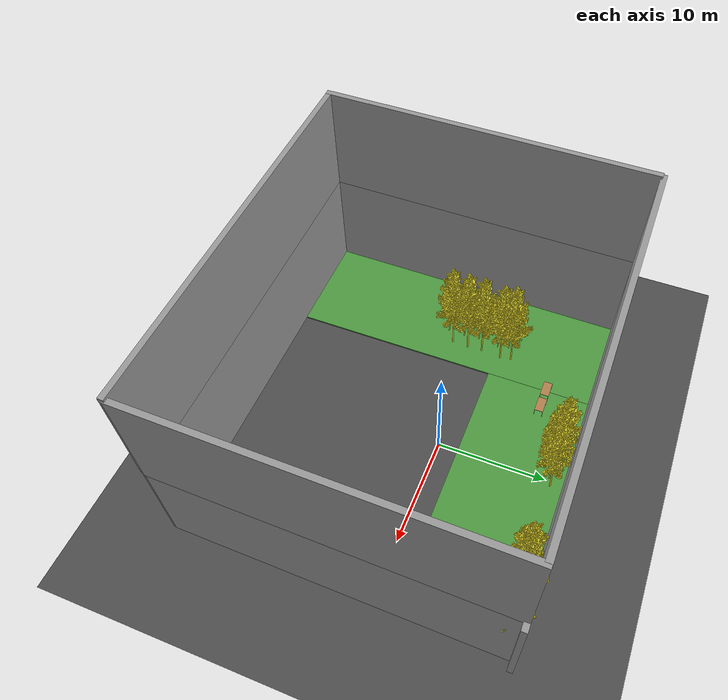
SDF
<sdf version="1.6">
 <world name="default">
  <light name="sun" type="directional">
   <pose>0 0 10 0 -0 0</pose>
   <diffuse>0.8 0.8 0.8 1</diffuse>
   <specular>0.2 0.2 0.2 1</specular>
   <attenuation>
    <range>1000</range>
    <constant>0.9</constant>
    <linear>0.01</linear>
    <quadratic>0.001</quadratic>
   </attenuation>
   <direction>-0.5 0.1 -0.9</direction>
  </light>
  <model name="ground_plane">
   <static>1</static>
   <link name="link">
    <collision name="collision">
     <geometry><plane><normal>0 0 1</normal><size>40000 40000</size></plane></geometry>
     <surface>
      <contact><collide_bitmask>65535</collide_bitmask></contact>
      <friction><ode><mu>100</mu><mu2>50</mu2></ode></friction>
     </surface>
    </collision>
    <visual name="visual">
     <cast_shadows>0</cast_shadows>
     <geometry><plane><normal>0 0 1</normal><size>50 50</size></plane></geometry>
     <material>
      <script><uri>file://media/materials/scripts/gazebo.material</uri><name>Gazebo/Road</name></script>
     </material>
    </visual>
   </link>
  </model>
  <gravity>0 0 -9.8</gravity>
  <magnetic_field>6e-06 2.3e-05 -4.2e-05</magnetic_field>
  <physics name="default_physics" default="0" type="ode">
   <max_step_size>0.001</max_step_size>
   <real_time_factor>1</real_time_factor>
   <real_time_update_rate>1000</real_time_update_rate>
  </physics>
  <scene><ambient>0.4 0.4 0.4 1</ambient><background>0.7 0.7 0.7 1</background><shadows>1</shadows></scene>
  <audio><device>default</device></audio>
  <spherical_coordinates>
   <surface_model>EARTH_WGS84</surface_model>
   <latitude_deg>0</latitude_deg>
   <longitude_deg>0</longitude_deg>
   <elevation>0</elevation>
   <heading_deg>0</heading_deg>
  </spherical_coordinates>
  <model name="grass_plane">
   <link name="link">
    <inertial>
     <mass>1</mass>
     <inertia><ixx>1</ixx><ixy>0</ixy><ixz>0</ixz><iyy>1</iyy><iyz>0</iyz><izz>1</izz></inertia>
    </inertial>
    <visual name="visual">
     <cast_shadows>0</cast_shadows>
     <geometry><box><size>10 30 0.2</size></box></geometry>
     <material>
      <script><uri>file://media/materials/scripts/gazebo.material</uri><name>Gazebo/Grass</name></script>
     </material>
    </visual>
    <collision name="collision">
     <geometry><box><size>10 30 0.2</size></box></geometry>
     <surface>
      <friction>
       <ode><mu>1</mu><mu2>1</mu2><fdir1>0 0 0</fdir1><slip1>0</slip1><slip2>0</slip2></ode>
       <torsional>
        <coefficient>1</coefficient>
        <patch_radius>0</patch_radius>
        <surface_radius>0</surface_radius>
        <use_patch_radius>1</use_patch_radius>
        <ode><slip>0</slip></ode>
       </torsional>
      </friction>
      <bounce><restitution_coefficient>0</restitution_coefficient><threshold>1e+06</threshold></bounce>
      <contact>
       <collide_without_contact>0</collide_without_contact>
       <collide_without_contact_bitmask>1</collide_without_contact_bitmask>
       <collide_bitmask>1</collide_bitmask>
       <ode>
        <soft_cfm>0</soft_cfm>
        <soft_erp>0.2</soft_erp>
        <kp>1e+13</kp>
        <kd>1</kd>
        <max_vel>0.01</max_vel>
        <min_depth>0</min_depth>
       </ode>
       <bullet>
        <split_impulse>1</split_impulse>
        <split_impulse_penetration_threshold>-0.01</split_impulse_penetration_threshold>
        <soft_cfm>0</soft_cfm>
        <soft_erp>0.2</soft_erp>
        <kp>1e+13</kp>
        <kd>1</kd>
       </bullet>
      </contact>
     </surface>
    </collision>
   </link>
   <static>1</static>
   <pose>-14.0993 -2.85316 0 0 -0 0</pose>
  </model>
  <model name="wall1">
   <link name="link">
    <enable_wind>1</enable_wind>
    <inertial>
     <mass>1</mass>
     <inertia><ixx>1</ixx><ixy>0</ixy><ixz>0</ixz><iyy>1</iyy><iyz>0</iyz><izz>1</izz></inertia>
    </inertial>
    <visual name="visual">
     <cast_shadows>0</cast_shadows>
     <geometry><box><size>35 0.5 10</size></box></geometry>
     <material>
      <script>
       <uri>model://grey_wall/materials/scripts</uri>
       <uri>model://grey_wall/materials/textures</uri>
       <name>vrc/grey_wall</name>
      </script>
      <shader type="pixel"><normal_map>__default__</normal_map></shader>
      <ambient>1 1 1 1</ambient>
      <diffuse>1 1 1 1</diffuse>
      <specular>0 0 0 1</specular>
      <emissive>0 0 0 1</emissive>
     </material>
    </visual>
    <collision name="collision">
     <geometry><box><size>35 0.5 10</size></box></geometry>
     <surface>
      <friction>
       <ode><mu>1</mu><mu2>1</mu2><fdir1>0 0 0</fdir1><slip1>0</slip1><slip2>0</slip2></ode>
       <torsional>
        <coefficient>1</coefficient>
        <patch_radius>0</patch_radius>
        <surface_radius>0</surface_radius>
        <use_patch_radius>1</use_patch_radius>
        <ode><slip>0</slip></ode>
       </torsional>
      </friction>
      <bounce><restitution_coefficient>0</restitution_coefficient><threshold>1e+06</threshold></bounce>
      <contact>
       <collide_without_contact>0</collide_without_contact>
       <collide_without_contact_bitmask>1</collide_without_contact_bitmask>
       <collide_bitmask>1</collide_bitmask>
       <ode>
        <soft_cfm>0</soft_cfm>
        <soft_erp>0.2</soft_erp>
        <kp>1e+13</kp>
        <kd>1</kd>
        <max_vel>0.01</max_vel>
        <min_depth>0</min_depth>
       </ode>
       <bullet>
        <split_impulse>1</split_impulse>
        <split_impulse_penetration_threshold>-0.01</split_impulse_penetration_threshold>
        <soft_cfm>0</soft_cfm>
        <soft_erp>0.2</soft_erp>
        <kp>1e+13</kp>
        <kd>1</kd>
       </bullet>
      </contact>
     </surface>
    </collision>
   </link>
   <static>1</static>
   <pose>-1.89732 -17.9183 5 0 -0 0</pose>
  </model>
  <model name="wall2">
   <link name="link">
    <enable_wind>1</enable_wind>
    <inertial>
     <mass>1</mass>
     <inertia><ixx>1</ixx><ixy>0</ixy><ixz>0</ixz><iyy>1</iyy><iyz>0</iyz><izz>1</izz></inertia>
    </inertial>
    <visual name="visual">
     <cast_shadows>0</cast_shadows>
     <geometry><box><size>30 0.5 10</size></box></geometry>
     <material>
      <script>
       <uri>model://grey_wall/materials/scripts</uri>
       <uri>model://grey_wall/materials/textures</uri>
       <name>vrc/grey_wall</name>
      </script>
      <shader type="pixel"><normal_map>__default__</normal_map></shader>
      <ambient>1 1 1 1</ambient>
      <diffuse>1 1 1 1</diffuse>
      <specular>0 0 0 1</specular>
      <emissive>0 0 0 1</emissive>
     </material>
    </visual>
    <collision name="collision">
     <geometry><box><size>30 0.5 10</size></box></geometry>
     <surface>
      <friction>
       <ode><mu>1</mu><mu2>1</mu2><fdir1>0 0 0</fdir1><slip1>0</slip1><slip2>0</slip2></ode>
       <torsional>
        <coefficient>1</coefficient>
        <patch_radius>0</patch_radius>
        <surface_radius>0</surface_radius>
        <use_patch_radius>1</use_patch_radius>
        <ode><slip>0</slip></ode>
       </torsional>
      </friction>
      <bounce><restitution_coefficient>0</restitution_coefficient><threshold>1e+06</threshold></bounce>
      <contact>
       <collide_without_contact>0</collide_without_contact>
       <collide_without_contact_bitmask>1</collide_without_contact_bitmask>
       <collide_bitmask>1</collide_bitmask>
       <ode>
        <soft_cfm>0</soft_cfm>
        <soft_erp>0.2</soft_erp>
        <kp>1e+13</kp>
        <kd>1</kd>
        <max_vel>0.01</max_vel>
        <min_depth>0</min_depth>
       </ode>
       <bullet>
        <split_impulse>1</split_impulse>
        <split_impulse_penetration_threshold>-0.01</split_impulse_penetration_threshold>
        <soft_cfm>0</soft_cfm>
        <soft_erp>0.2</soft_erp>
        <kp>1e+13</kp>
        <kd>1</kd>
       </bullet>
      </contact>
     </surface>
    </collision>
   </link>
   <static>1</static>
   <pose>15.5152 -2.93939 5 0 -0 1.56334</pose>
  </model>
  <model name="wall2_clone">
   <link name="link">
    <enable_wind>1</enable_wind>
    <inertial>
     <mass>1</mass>
     <inertia><ixx>1</ixx><ixy>0</ixy><ixz>0</ixz><iyy>1</iyy><iyz>0</iyz><izz>1</izz></inertia>
    </inertial>
    <visual name="visual">
     <cast_shadows>0</cast_shadows>
     <geometry><box><size>30 0.5 10</size></box></geometry>
     <material>
      <script>
       <uri>model://grey_wall/materials/scripts</uri>
       <uri>model://grey_wall/materials/textures</uri>
       <name>vrc/grey_wall</name>
      </script>
      <shader type="pixel"><normal_map>__default__</normal_map></shader>
      <ambient>1 1 1 1</ambient>
      <diffuse>1 1 1 1</diffuse>
      <specular>0 0 0 1</specular>
      <emissive>0 0 0 1</emissive>
     </material>
    </visual>
    <collision name="collision">
     <geometry><box><size>30 0.5 10</size></box></geometry>
     <surface>
      <friction>
       <ode><mu>1</mu><mu2>1</mu2><fdir1>0 0 0</fdir1><slip1>0</slip1><slip2>0</slip2></ode>
       <torsional>
        <coefficient>1</coefficient>
        <patch_radius>0</patch_radius>
        <surface_radius>0</surface_radius>
        <use_patch_radius>1</use_patch_radius>
        <ode><slip>0</slip></ode>
       </torsional>
      </friction>
      <bounce><restitution_coefficient>0</restitution_coefficient><threshold>1e+06</threshold></bounce>
      <contact>
       <collide_without_contact>0</collide_without_contact>
       <collide_without_contact_bitmask>1</collide_without_contact_bitmask>
       <collide_bitmask>1</collide_bitmask>
       <ode>
        <soft_cfm>0</soft_cfm>
        <soft_erp>0.2</soft_erp>
        <kp>1e+13</kp>
        <kd>1</kd>
        <max_vel>0.01</max_vel>
        <min_depth>0</min_depth>
       </ode>
       <bullet>
        <split_impulse>1</split_impulse>
        <split_impulse_penetration_threshold>-0.01</split_impulse_penetration_threshold>
        <soft_cfm>0</soft_cfm>
        <soft_erp>0.2</soft_erp>
        <kp>1e+13</kp>
        <kd>1</kd>
       </bullet>
      </contact>
     </surface>
    </collision>
   </link>
   <static>1</static>
   <pose>-19.1022 -3.20511 5 0 -0 1.56334</pose>
  </model>
  <model name="wall1_clone">
   <link name="link">
    <enable_wind>1</enable_wind>
    <inertial>
     <mass>1</mass>
     <inertia><ixx>1</ixx><ixy>0</ixy><ixz>0</ixz><iyy>1</iyy><iyz>0</iyz><izz>1</izz></inertia>
    </inertial>
    <visual name="visual">
     <cast_shadows>0</cast_shadows>
     <geometry><box><size>35 0.5 10</size></box></geometry>
     <material>
      <script>
       <uri>model://grey_wall/materials/scripts</uri>
       <uri>model://grey_wall/materials/textures</uri>
       <name>vrc/grey_wall</name>
      </script>
      <shader type="pixel"><normal_map>__default__</normal_map></shader>
      <ambient>1 1 1 1</ambient>
      <diffuse>1 1 1 1</diffuse>
      <specular>0 0 0 1</specular>
      <emissive>0 0 0 1</emissive>
     </material>
    </visual>
    <collision name="collision">
     <geometry><box><size>35 0.5 10</size></box></geometry>
     <surface>
      <friction>
       <ode><mu>1</mu><mu2>1</mu2><fdir1>0 0 0</fdir1><slip1>0</slip1><slip2>0</slip2></ode>
       <torsional>
        <coefficient>1</coefficient>
        <patch_radius>0</patch_radius>
        <surface_radius>0</surface_radius>
        <use_patch_radius>1</use_patch_radius>
        <ode><slip>0</slip></ode>
       </torsional>
      </friction>
      <bounce><restitution_coefficient>0</restitution_coefficient><threshold>1e+06</threshold></bounce>
      <contact>
       <collide_without_contact>0</collide_without_contact>
       <collide_without_contact_bitmask>1</collide_without_contact_bitmask>
       <collide_bitmask>1</collide_bitmask>
       <ode>
        <soft_cfm>0</soft_cfm>
        <soft_erp>0.2</soft_erp>
        <kp>1e+13</kp>
        <kd>1</kd>
        <max_vel>0.01</max_vel>
        <min_depth>0</min_depth>
       </ode>
       <bullet>
        <split_impulse>1</split_impulse>
        <split_impulse_penetration_threshold>-0.01</split_impulse_penetration_threshold>
        <soft_cfm>0</soft_cfm>
        <soft_erp>0.2</soft_erp>
        <kp>1e+13</kp>
        <kd>1</kd>
       </bullet>
      </contact>
     </surface>
    </collision>
   </link>
   <static>1</static>
   <pose>-0.820228 11.9084 5 0 -0 0</pose>
  </model>
  <atmosphere type="adiabatic"/>
  <model name="table">
   <static>1</static>
   <link name="link">
    <collision name="surface">
     <pose>0 0 1 0 -0 0</pose>
     <geometry><box><size>1.5 0.8 0.03</size></box></geometry>
     <surface><friction><ode><mu>0.6</mu><mu2>0.6</mu2></ode></friction></surface>
    </collision>
    <visual name="visual1">
     <pose>0 0 1 0 -0 0</pose>
     <geometry><box><size>1.5 0.8 0.03</size></box></geometry>
     <material>
      <script><uri>file://media/materials/scripts/gazebo.material</uri><name>Gazebo/Wood</name></script>
     </material>
    </visual>
    <collision name="front_left_leg">
     <pose>0.68 0.38 0.5 0 -0 0</pose>
     <geometry><cylinder><radius>0.02</radius><length>1</length></cylinder></geometry>
    </collision>
    <visual name="front_left_leg">
     <pose>0.68 0.38 0.5 0 -0 0</pose>
     <geometry><cylinder><radius>0.02</radius><length>1</length></cylinder></geometry>
     <material>
      <script><uri>file://media/materials/scripts/gazebo.material</uri><name>Gazebo/Grey</name></script>
     </material>
    </visual>
    <collision name="front_right_leg">
     <pose>0.68 -0.38 0.5 0 -0 0</pose>
     <geometry><cylinder><radius>0.02</radius><length>1</length></cylinder></geometry>
    </collision>
    <visual name="front_right_leg">
     <pose>0.68 -0.38 0.5 0 -0 0</pose>
     <geometry><cylinder><radius>0.02</radius><length>1</length></cylinder></geometry>
     <material>
      <script><uri>file://media/materials/scripts/gazebo.material</uri><name>Gazebo/Grey</name></script>
     </material>
    </visual>
    <collision name="back_right_leg">
     <pose>-0.68 -0.38 0.5 0 -0 0</pose>
     <geometry><cylinder><radius>0.02</radius><length>1</length></cylinder></geometry>
    </collision>
    <visual name="back_right_leg">
     <pose>-0.68 -0.38 0.5 0 -0 0</pose>
     <geometry><cylinder><radius>0.02</radius><length>1</length></cylinder></geometry>
     <material>
      <script><uri>file://media/materials/scripts/gazebo.material</uri><name>Gazebo/Grey</name></script>
     </material>
    </visual>
    <collision name="back_left_leg">
     <pose>-0.68 0.38 0.5 0 -0 0</pose>
     <geometry><cylinder><radius>0.02</radius><length>1</length></cylinder></geometry>
    </collision>
    <visual name="back_left_leg">
     <pose>-0.68 0.38 0.5 0 -0 0</pose>
     <geometry><cylinder><radius>0.02</radius><length>1</length></cylinder></geometry>
     <material>
      <script><uri>file://media/materials/scripts/gazebo.material</uri><name>Gazebo/Grey</name></script>
     </material>
    </visual>
   </link>
   <pose>-6.87951 7.56953 0 0 -0 0</pose>
  </model>
  <model name="table_0">
   <static>1</static>
   <link name="link">
    <collision name="surface">
     <pose>0 0 1 0 -0 0</pose>
     <geometry><box><size>1.5 0.8 0.03</size></box></geometry>
     <surface><friction><ode><mu>0.6</mu><mu2>0.6</mu2></ode></friction></surface>
    </collision>
    <visual name="visual1">
     <pose>0 0 1 0 -0 0</pose>
     <geometry><box><size>1.5 0.8 0.03</size></box></geometry>
     <material>
      <script><uri>file://media/materials/scripts/gazebo.material</uri><name>Gazebo/Wood</name></script>
     </material>
    </visual>
    <collision name="front_left_leg">
     <pose>0.68 0.38 0.5 0 -0 0</pose>
     <geometry><cylinder><radius>0.02</radius><length>1</length></cylinder></geometry>
    </collision>
    <visual name="front_left_leg">
     <pose>0.68 0.38 0.5 0 -0 0</pose>
     <geometry><cylinder><radius>0.02</radius><length>1</length></cylinder></geometry>
     <material>
      <script><uri>file://media/materials/scripts/gazebo.material</uri><name>Gazebo/Grey</name></script>
     </material>
    </visual>
    <collision name="front_right_leg">
     <pose>0.68 -0.38 0.5 0 -0 0</pose>
     <geometry><cylinder><radius>0.02</radius><length>1</length></cylinder></geometry>
    </collision>
    <visual name="front_right_leg">
     <pose>0.68 -0.38 0.5 0 -0 0</pose>
     <geometry><cylinder><radius>0.02</radius><length>1</length></cylinder></geometry>
     <material>
      <script><uri>file://media/materials/scripts/gazebo.material</uri><name>Gazebo/Grey</name></script>
     </material>
    </visual>
    <collision name="back_right_leg">
     <pose>-0.68 -0.38 0.5 0 -0 0</pose>
     <geometry><cylinder><radius>0.02</radius><length>1</length></cylinder></geometry>
    </collision>
    <visual name="back_right_leg">
     <pose>-0.68 -0.38 0.5 0 -0 0</pose>
     <geometry><cylinder><radius>0.02</radius><length>1</length></cylinder></geometry>
     <material>
      <script><uri>file://media/materials/scripts/gazebo.material</uri><name>Gazebo/Grey</name></script>
     </material>
    </visual>
    <collision name="back_left_leg">
     <pose>-0.68 0.38 0.5 0 -0 0</pose>
     <geometry><cylinder><radius>0.02</radius><length>1</length></cylinder></geometry>
    </collision>
    <visual name="back_left_leg">
     <pose>-0.68 0.38 0.5 0 -0 0</pose>
     <geometry><cylinder><radius>0.02</radius><length>1</length></cylinder></geometry>
     <material>
      <script><uri>file://media/materials/scripts/gazebo.material</uri><name>Gazebo/Grey</name></script>
     </material>
    </visual>
   </link>
   <pose>-8.73996 7.5834 0 0 -0 0</pose>
  </model>
  <model name="wall1_clone_clone">
   <link name="link">
    <enable_wind>1</enable_wind>
    <inertial>
     <mass>1</mass>
     <inertia><ixx>1</ixx><ixy>0</ixy><ixz>0</ixz><iyy>1</iyy><iyz>0</iyz><izz>1</izz></inertia>
    </inertial>
    <visual name="visual">
     <cast_shadows>0</cast_shadows>
     <geometry><box><size>35 0.5 10</size></box></geometry>
     <material>
      <script>
       <uri>model://grey_wall/materials/scripts</uri>
       <uri>model://grey_wall/materials/textures</uri>
       <name>vrc/grey_wall</name>
      </script>
      <shader type="pixel"><normal_map>__default__</normal_map></shader>
      <ambient>1 1 1 1</ambient>
      <diffuse>1 1 1 1</diffuse>
      <specular>0 0 0 1</specular>
      <emissive>0 0 0 1</emissive>
     </material>
    </visual>
    <collision name="collision">
     <geometry><box><size>35 0.5 10</size></box></geometry>
     <surface>
      <friction>
       <ode><mu>1</mu><mu2>1</mu2><fdir1>0 0 0</fdir1><slip1>0</slip1><slip2>0</slip2></ode>
       <torsional>
        <coefficient>1</coefficient>
        <patch_radius>0</patch_radius>
        <surface_radius>0</surface_radius>
        <use_patch_radius>1</use_patch_radius>
        <ode><slip>0</slip></ode>
       </torsional>
      </friction>
      <bounce><restitution_coefficient>0</restitution_coefficient><threshold>1e+06</threshold></bounce>
      <contact>
       <collide_without_contact>0</collide_without_contact>
       <collide_without_contact_bitmask>1</collide_without_contact_bitmask>
       <collide_bitmask>1</collide_bitmask>
       <ode>
        <soft_cfm>0</soft_cfm>
        <soft_erp>0.2</soft_erp>
        <kp>1e+13</kp>
        <kd>1</kd>
        <max_vel>0.01</max_vel>
        <min_depth>0</min_depth>
       </ode>
       <bullet>
        <split_impulse>1</split_impulse>
        <split_impulse_penetration_threshold>-0.01</split_impulse_penetration_threshold>
        <soft_cfm>0</soft_cfm>
        <soft_erp>0.2</soft_erp>
        <kp>1e+13</kp>
        <kd>1</kd>
       </bullet>
      </contact>
     </surface>
    </collision>
   </link>
   <static>1</static>
   <pose>-1.83498 11.9098 14.7109 0 -0 0</pose>
  </model>
  <model name="wall1_clone_clone_0">
   <link name="link">
    <enable_wind>1</enable_wind>
    <inertial>
     <mass>1</mass>
     <inertia><ixx>1</ixx><ixy>0</ixy><ixz>0</ixz><iyy>1</iyy><iyz>0</iyz><izz>1</izz></inertia>
    </inertial>
    <visual name="visual">
     <cast_shadows>0</cast_shadows>
     <geometry><box><size>35 0.5 10</size></box></geometry>
     <material>
      <script>
       <uri>model://grey_wall/materials/scripts</uri>
       <uri>model://grey_wall/materials/textures</uri>
       <name>vrc/grey_wall</name>
      </script>
      <shader type="pixel"><normal_map>__default__</normal_map></shader>
      <ambient>1 1 1 1</ambient>
      <diffuse>1 1 1 1</diffuse>
      <specular>0 0 0 1</specular>
      <emissive>0 0 0 1</emissive>
     </material>
    </visual>
    <collision name="collision">
     <geometry><box><size>35 0.5 10</size></box></geometry>
     <surface>
      <friction>
       <ode><mu>1</mu><mu2>1</mu2><fdir1>0 0 0</fdir1><slip1>0</slip1><slip2>0</slip2></ode>
       <torsional>
        <coefficient>1</coefficient>
        <patch_radius>0</patch_radius>
        <surface_radius>0</surface_radius>
        <use_patch_radius>1</use_patch_radius>
        <ode><slip>0</slip></ode>
       </torsional>
      </friction>
      <bounce><restitution_coefficient>0</restitution_coefficient><threshold>1e+06</threshold></bounce>
      <contact>
       <collide_without_contact>0</collide_without_contact>
       <collide_without_contact_bitmask>1</collide_without_contact_bitmask>
       <collide_bitmask>1</collide_bitmask>
       <ode>
        <soft_cfm>0</soft_cfm>
        <soft_erp>0.2</soft_erp>
        <kp>1e+13</kp>
        <kd>1</kd>
        <max_vel>0.01</max_vel>
        <min_depth>0</min_depth>
       </ode>
       <bullet>
        <split_impulse>1</split_impulse>
        <split_impulse_penetration_threshold>-0.01</split_impulse_penetration_threshold>
        <soft_cfm>0</soft_cfm>
        <soft_erp>0.2</soft_erp>
        <kp>1e+13</kp>
        <kd>1</kd>
       </bullet>
      </contact>
     </surface>
    </collision>
   </link>
   <static>1</static>
   <pose>-1.82946 -17.9039 14.9391 0 -0 0</pose>
  </model>
  <model name="wall2_clone_0">
   <link name="link">
    <enable_wind>1</enable_wind>
    <inertial>
     <mass>1</mass>
     <inertia><ixx>1</ixx><ixy>0</ixy><ixz>0</ixz><iyy>1</iyy><iyz>0</iyz><izz>1</izz></inertia>
    </inertial>
    <visual name="visual">
     <cast_shadows>0</cast_shadows>
     <geometry><box><size>30 0.5 10</size></box></geometry>
     <material>
      <script>
       <uri>model://grey_wall/materials/scripts</uri>
       <uri>model://grey_wall/materials/textures</uri>
       <name>vrc/grey_wall</name>
      </script>
      <shader type="pixel"><normal_map>__default__</normal_map></shader>
      <ambient>1 1 1 1</ambient>
      <diffuse>1 1 1 1</diffuse>
      <specular>0 0 0 1</specular>
      <emissive>0 0 0 1</emissive>
     </material>
    </visual>
    <collision name="collision">
     <geometry><box><size>30 0.5 10</size></box></geometry>
     <surface>
      <friction>
       <ode><mu>1</mu><mu2>1</mu2><fdir1>0 0 0</fdir1><slip1>0</slip1><slip2>0</slip2></ode>
       <torsional>
        <coefficient>1</coefficient>
        <patch_radius>0</patch_radius>
        <surface_radius>0</surface_radius>
        <use_patch_radius>1</use_patch_radius>
        <ode><slip>0</slip></ode>
       </torsional>
      </friction>
      <bounce><restitution_coefficient>0</restitution_coefficient><threshold>1e+06</threshold></bounce>
      <contact>
       <collide_without_contact>0</collide_without_contact>
       <collide_without_contact_bitmask>1</collide_without_contact_bitmask>
       <collide_bitmask>1</collide_bitmask>
       <ode>
        <soft_cfm>0</soft_cfm>
        <soft_erp>0.2</soft_erp>
        <kp>1e+13</kp>
        <kd>1</kd>
        <max_vel>0.01</max_vel>
        <min_depth>0</min_depth>
       </ode>
       <bullet>
        <split_impulse>1</split_impulse>
        <split_impulse_penetration_threshold>-0.01</split_impulse_penetration_threshold>
        <soft_cfm>0</soft_cfm>
        <soft_erp>0.2</soft_erp>
        <kp>1e+13</kp>
        <kd>1</kd>
       </bullet>
      </contact>
     </surface>
    </collision>
   </link>
   <static>1</static>
   <pose>15.6182 -2.86069 14.7068 0 -0 1.56334</pose>
  </model>
  <model name="wall2_clone_clone">
   <link name="link">
    <enable_wind>1</enable_wind>
    <inertial>
     <mass>1</mass>
     <inertia><ixx>1</ixx><ixy>0</ixy><ixz>0</ixz><iyy>1</iyy><iyz>0</iyz><izz>1</izz></inertia>
    </inertial>
    <visual name="visual">
     <cast_shadows>0</cast_shadows>
     <geometry><box><size>30 0.5 10</size></box></geometry>
     <material>
      <script>
       <uri>model://grey_wall/materials/scripts</uri>
       <uri>model://grey_wall/materials/textures</uri>
       <name>vrc/grey_wall</name>
      </script>
      <shader type="pixel"><normal_map>__default__</normal_map></shader>
      <ambient>1 1 1 1</ambient>
      <diffuse>1 1 1 1</diffuse>
      <specular>0 0 0 1</specular>
      <emissive>0 0 0 1</emissive>
     </material>
    </visual>
    <collision name="collision">
     <geometry><box><size>30 0.5 10</size></box></geometry>
     <surface>
      <friction>
       <ode><mu>1</mu><mu2>1</mu2><fdir1>0 0 0</fdir1><slip1>0</slip1><slip2>0</slip2></ode>
       <torsional>
        <coefficient>1</coefficient>
        <patch_radius>0</patch_radius>
        <surface_radius>0</surface_radius>
        <use_patch_radius>1</use_patch_radius>
        <ode><slip>0</slip></ode>
       </torsional>
      </friction>
      <bounce><restitution_coefficient>0</restitution_coefficient><threshold>1e+06</threshold></bounce>
      <contact>
       <collide_without_contact>0</collide_without_contact>
       <collide_without_contact_bitmask>1</collide_without_contact_bitmask>
       <collide_bitmask>1</collide_bitmask>
       <ode>
        <soft_cfm>0</soft_cfm>
        <soft_erp>0.2</soft_erp>
        <kp>1e+13</kp>
        <kd>1</kd>
        <max_vel>0.01</max_vel>
        <min_depth>0</min_depth>
       </ode>
       <bullet>
        <split_impulse>1</split_impulse>
        <split_impulse_penetration_threshold>-0.01</split_impulse_penetration_threshold>
        <soft_cfm>0</soft_cfm>
        <soft_erp>0.2</soft_erp>
        <kp>1e+13</kp>
        <kd>1</kd>
       </bullet>
      </contact>
     </surface>
    </collision>
   </link>
   <static>1</static>
   <pose>-19.0766 -3.17047 14.9475 0 -0 1.56334</pose>
  </model>
  <model name="tree2">
   <link name="tree_base">
    <inertial>
     <mass>50</mass>
     <inertia>
      <ixx>6.71748</ixx>
      <ixy>2.148e-05</ixy>
      <ixz>-2.4e-07</ixz>
      <iyy>6.71748</iyy>
      <iyz>-0.171807</iyz>
      <izz>6.71748</izz>
     </inertia>
    </inertial>
    <collision name="tree_base_fixed_joint_lump__collision_collision">
     <geometry><mesh><scale>0.4 0.4 0.6</scale><uri>model://tree/meshes/tree_25k_mesh.dae</uri></mesh></geometry>
    </collision>
    <visual name="tree_base_visual">
     <geometry><mesh><scale>0.4 0.4 0.6</scale><uri>model://tree/meshes/tree_25k_mesh.dae</uri></mesh></geometry>
     <material>
      <script><name>Gazebo/Yellow</name><uri>file://media/materials/scripts/gazebo.material</uri></script>
     </material>
    </visual>
   </link>
   <joint name="joint_tree_base" type="fixed"><child>tree_base</child><parent>world</parent></joint>
   <static>1</static>
   <pose>-11.5 7 0 0 -0 0</pose>
  </model>
  <model name="tree0">
   <link name="tree_base">
    <inertial>
     <mass>50</mass>
     <inertia>
      <ixx>6.71748</ixx>
      <ixy>2.148e-05</ixy>
      <ixz>-2.4e-07</ixz>
      <iyy>6.71748</iyy>
      <iyz>-0.171807</iyz>
      <izz>6.71748</izz>
     </inertia>
    </inertial>
    <collision name="tree_base_fixed_joint_lump__collision_collision">
     <geometry><mesh><scale>0.4 0.4 0.6</scale><uri>model://tree/meshes/tree_25k_mesh.dae</uri></mesh></geometry>
    </collision>
    <visual name="tree_base_visual">
     <geometry><mesh><scale>0.4 0.4 0.6</scale><uri>model://tree/meshes/tree_25k_mesh.dae</uri></mesh></geometry>
     <material>
      <script><name>Gazebo/Yellow</name><uri>file://media/materials/scripts/gazebo.material</uri></script>
     </material>
    </visual>
   </link>
   <joint name="joint_tree_base" type="fixed"><child>tree_base</child><parent>world</parent></joint>
   <static>1</static>
   <pose>-11.5 1 0 0 -0 0</pose>
  </model>
  <model name="tree1">
   <link name="tree_base">
    <inertial>
     <mass>50</mass>
     <inertia>
      <ixx>6.71748</ixx>
      <ixy>2.148e-05</ixy>
      <ixz>-2.4e-07</ixz>
      <iyy>6.71748</iyy>
      <iyz>-0.171807</iyz>
      <izz>6.71748</izz>
     </inertia>
    </inertial>
    <collision name="tree_base_fixed_joint_lump__collision_collision">
     <geometry><mesh><scale>0.4 0.4 0.6</scale><uri>model://tree/meshes/tree_25k_mesh.dae</uri></mesh></geometry>
    </collision>
    <visual name="tree_base_visual">
     <geometry><mesh><scale>0.4 0.4 0.6</scale><uri>model://tree/meshes/tree_25k_mesh.dae</uri></mesh></geometry>
     <material>
      <script><name>Gazebo/Yellow</name><uri>file://media/materials/scripts/gazebo.material</uri></script>
     </material>
    </visual>
   </link>
   <joint name="joint_tree_base" type="fixed"><child>tree_base</child><parent>world</parent></joint>
   <static>1</static>
   <pose>-11.5 4 0 0 -0 0</pose>
  </model>
  <model name="tree2_clone">
   <link name="tree_base">
    <inertial>
     <mass>50</mass>
     <inertia>
      <ixx>6.71748</ixx>
      <ixy>2.148e-05</ixy>
      <ixz>-2.4e-07</ixz>
      <iyy>6.71748</iyy>
      <iyz>-0.171807</iyz>
      <izz>6.71748</izz>
     </inertia>
    </inertial>
    <collision name="tree_base_fixed_joint_lump__collision_collision">
     <geometry><mesh><scale>0.4 0.4 0.6</scale><uri>model://tree/meshes/tree_25k_mesh.dae</uri></mesh></geometry>
    </collision>
    <visual name="tree_base_visual">
     <geometry><mesh><scale>0.4 0.4 0.6</scale><uri>model://tree/meshes/tree_25k_mesh.dae</uri></mesh></geometry>
     <material>
      <script><name>Gazebo/Yellow</name><uri>file://media/materials/scripts/gazebo.material</uri></script>
     </material>
    </visual>
   </link>
   <joint name="joint_tree_base" type="fixed"><child>tree_base</child><parent>world</parent></joint>
   <static>1</static>
   <pose>14.3843 14.1848 0 0 -0 0</pose>
  </model>
  <model name="tree2_clone_0">
   <link name="tree_base">
    <inertial>
     <mass>50</mass>
     <inertia>
      <ixx>6.71748</ixx>
      <ixy>2.148e-05</ixy>
      <ixz>-2.4e-07</ixz>
      <iyy>6.71748</iyy>
      <iyz>-0.171807</iyz>
      <izz>6.71748</izz>
     </inertia>
    </inertial>
    <collision name="tree_base_fixed_joint_lump__collision_collision">
     <geometry><mesh><scale>0.4 0.4 0.6</scale><uri>model://tree/meshes/tree_25k_mesh.dae</uri></mesh></geometry>
    </collision>
    <visual name="tree_base_visual">
     <geometry><mesh><scale>0.4 0.4 0.6</scale><uri>model://tree/meshes/tree_25k_mesh.dae</uri></mesh></geometry>
     <material>
      <script><name>Gazebo/Yellow</name><uri>file://media/materials/scripts/gazebo.material</uri></script>
     </material>
    </visual>
   </link>
   <joint name="joint_tree_base" type="fixed"><child>tree_base</child><parent>world</parent></joint>
   <static>1</static>
   <pose>11.7602 14.4352 0 0 -0 0</pose>
  </model>
  <model name="tree2_clone_1">
   <link name="tree_base">
    <inertial>
     <mass>50</mass>
     <inertia>
      <ixx>6.71748</ixx>
      <ixy>2.148e-05</ixy>
      <ixz>-2.4e-07</ixz>
      <iyy>6.71748</iyy>
      <iyz>-0.171807</iyz>
      <izz>6.71748</izz>
     </inertia>
    </inertial>
    <collision name="tree_base_fixed_joint_lump__collision_collision">
     <geometry><mesh><scale>0.4 0.4 0.6</scale><uri>model://tree/meshes/tree_25k_mesh.dae</uri></mesh></geometry>
    </collision>
    <visual name="tree_base_visual">
     <geometry><mesh><scale>0.4 0.4 0.6</scale><uri>model://tree/meshes/tree_25k_mesh.dae</uri></mesh></geometry>
     <material>
      <script><name>Gazebo/Yellow</name><uri>file://media/materials/scripts/gazebo.material</uri></script>
     </material>
    </visual>
   </link>
   <joint name="joint_tree_base" type="fixed"><child>tree_base</child><parent>world</parent></joint>
   <static>1</static>
   <pose>9.27352 14.5571 0 0 -0 0</pose>
  </model>
  <model name="tree2_clone_2">
   <link name="tree_base">
    <inertial>
     <mass>50</mass>
     <inertia>
      <ixx>6.71748</ixx>
      <ixy>2.148e-05</ixy>
      <ixz>-2.4e-07</ixz>
      <iyy>6.71748</iyy>
      <iyz>-0.171807</iyz>
      <izz>6.71748</izz>
     </inertia>
    </inertial>
    <collision name="tree_base_fixed_joint_lump__collision_collision">
     <geometry><mesh><scale>0.4 0.4 0.6</scale><uri>model://tree/meshes/tree_25k_mesh.dae</uri></mesh></geometry>
    </collision>
    <visual name="tree_base_visual">
     <geometry><mesh><scale>0.4 0.4 0.6</scale><uri>model://tree/meshes/tree_25k_mesh.dae</uri></mesh></geometry>
     <material>
      <script><name>Gazebo/Yellow</name><uri>file://media/materials/scripts/gazebo.material</uri></script>
     </material>
    </visual>
   </link>
   <joint name="joint_tree_base" type="fixed"><child>tree_base</child><parent>world</parent></joint>
   <static>1</static>
   <pose>0.408103 14.248 0 0 -0 0</pose>
  </model>
  <model name="tree2_clone_3">
   <link name="tree_base">
    <inertial>
     <mass>50</mass>
     <inertia>
      <ixx>6.71748</ixx>
      <ixy>2.148e-05</ixy>
      <ixz>-2.4e-07</ixz>
      <iyy>6.71748</iyy>
      <iyz>-0.171807</iyz>
      <izz>6.71748</izz>
     </inertia>
    </inertial>
    <collision name="tree_base_fixed_joint_lump__collision_collision">
     <geometry><mesh><scale>0.4 0.4 0.6</scale><uri>model://tree/meshes/tree_25k_mesh.dae</uri></mesh></geometry>
    </collision>
    <visual name="tree_base_visual">
     <geometry><mesh><scale>0.4 0.4 0.6</scale><uri>model://tree/meshes/tree_25k_mesh.dae</uri></mesh></geometry>
     <material>
      <script><name>Gazebo/Yellow</name><uri>file://media/materials/scripts/gazebo.material</uri></script>
     </material>
    </visual>
   </link>
   <joint name="joint_tree_base" type="fixed"><child>tree_base</child><parent>world</parent></joint>
   <static>1</static>
   <pose>-1.99906 14.2582 0 0 -0 0</pose>
  </model>
  <model name="grass_plane_clone">
   <link name="link">
    <inertial>
     <mass>1</mass>
     <inertia><ixx>1</ixx><ixy>0</ixy><ixz>0</ixz><iyy>1</iyy><iyz>0</iyz><izz>1</izz></inertia>
    </inertial>
    <visual name="visual">
     <cast_shadows>0</cast_shadows>
     <geometry><box><size>10 30 0.2</size></box></geometry>
     <material>
      <script><uri>file://media/materials/scripts/gazebo.material</uri><name>Gazebo/Grass</name></script>
     </material>
    </visual>
    <collision name="collision">
     <geometry><box><size>10 30 0.2</size></box></geometry>
     <surface>
      <friction>
       <ode><mu>1</mu><mu2>1</mu2><fdir1>0 0 0</fdir1><slip1>0</slip1><slip2>0</slip2></ode>
       <torsional>
        <coefficient>1</coefficient>
        <patch_radius>0</patch_radius>
        <surface_radius>0</surface_radius>
        <use_patch_radius>1</use_patch_radius>
        <ode><slip>0</slip></ode>
       </torsional>
      </friction>
      <bounce><restitution_coefficient>0</restitution_coefficient><threshold>1e+06</threshold></bounce>
      <contact>
       <collide_without_contact>0</collide_without_contact>
       <collide_without_contact_bitmask>1</collide_without_contact_bitmask>
       <collide_bitmask>1</collide_bitmask>
       <ode>
        <soft_cfm>0</soft_cfm>
        <soft_erp>0.2</soft_erp>
        <kp>1e+13</kp>
        <kd>1</kd>
        <max_vel>0.01</max_vel>
        <min_depth>0</min_depth>
       </ode>
       <bullet>
        <split_impulse>1</split_impulse>
        <split_impulse_penetration_threshold>-0.01</split_impulse_penetration_threshold>
        <soft_cfm>0</soft_cfm>
        <soft_erp>0.2</soft_erp>
        <kp>1e+13</kp>
        <kd>1</kd>
       </bullet>
      </contact>
     </surface>
    </collision>
   </link>
   <static>1</static>
   <pose>0.738819 6.84729 0 0 0 -1.56837</pose>
  </model>
  <model name="tree2_clone_3_clone">
   <link name="tree_base">
    <inertial>
     <mass>50</mass>
     <inertia>
      <ixx>6.71748</ixx>
      <ixy>2.148e-05</ixy>
      <ixz>-2.4e-07</ixz>
      <iyy>6.71748</iyy>
      <iyz>-0.171807</iyz>
      <izz>6.71748</izz>
     </inertia>
    </inertial>
    <collision name="tree_base_fixed_joint_lump__collision_collision">
     <geometry><mesh><scale>0.4 0.4 0.6</scale><uri>model://tree/meshes/tree_25k_mesh.dae</uri></mesh></geometry>
    </collision>
    <visual name="tree_base_visual">
     <geometry><mesh><scale>0.4 0.4 0.6</scale><uri>model://tree/meshes/tree_25k_mesh.dae</uri></mesh></geometry>
     <material>
      <script><name>Gazebo/Yellow</name><uri>file://media/materials/scripts/gazebo.material</uri></script>
     </material>
    </visual>
   </link>
   <joint name="joint_tree_base" type="fixed"><child>tree_base</child><parent>world</parent></joint>
   <static>1</static>
   <pose>-0.594378 14.1103 0 0 -0 0</pose>
  </model>
  <model name="tree2_clone_3_clone_0">
   <link name="tree_base">
    <inertial>
     <mass>50</mass>
     <inertia>
      <ixx>6.71748</ixx>
      <ixy>2.148e-05</ixy>
      <ixz>-2.4e-07</ixz>
      <iyy>6.71748</iyy>
      <iyz>-0.171807</iyz>
      <izz>6.71748</izz>
     </inertia>
    </inertial>
    <collision name="tree_base_fixed_joint_lump__collision_collision">
     <geometry><mesh><scale>0.4 0.4 0.6</scale><uri>model://tree/meshes/tree_25k_mesh.dae</uri></mesh></geometry>
    </collision>
    <visual name="tree_base_visual">
     <geometry><mesh><scale>0.4 0.4 0.6</scale><uri>model://tree/meshes/tree_25k_mesh.dae</uri></mesh></geometry>
     <material>
      <script><name>Gazebo/Yellow</name><uri>file://media/materials/scripts/gazebo.material</uri></script>
     </material>
    </visual>
   </link>
   <joint name="joint_tree_base" type="fixed"><child>tree_base</child><parent>world</parent></joint>
   <static>1</static>
   <pose>-11.287 5.95617 0 0 -0 0</pose>
  </model>
  <model name="tree2_clone_3_clone_1">
   <link name="tree_base">
    <inertial>
     <mass>50</mass>
     <inertia>
      <ixx>6.71748</ixx>
      <ixy>2.148e-05</ixy>
      <ixz>-2.4e-07</ixz>
      <iyy>6.71748</iyy>
      <iyz>-0.171807</iyz>
      <izz>6.71748</izz>
     </inertia>
    </inertial>
    <collision name="tree_base_fixed_joint_lump__collision_collision">
     <geometry><mesh><scale>0.4 0.4 0.6</scale><uri>model://tree/meshes/tree_25k_mesh.dae</uri></mesh></geometry>
    </collision>
    <visual name="tree_base_visual">
     <geometry><mesh><scale>0.4 0.4 0.6</scale><uri>model://tree/meshes/tree_25k_mesh.dae</uri></mesh></geometry>
     <material>
      <script><name>Gazebo/Yellow</name><uri>file://media/materials/scripts/gazebo.material</uri></script>
     </material>
    </visual>
   </link>
   <joint name="joint_tree_base" type="fixed"><child>tree_base</child><parent>world</parent></joint>
   <static>1</static>
   <pose>-11.439 2.55088 0 0 -0 0</pose>
  </model>
  <model name="tree2_clone_3_clone_2">
   <link name="tree_base">
    <inertial>
     <mass>50</mass>
     <inertia>
      <ixx>6.71748</ixx>
      <ixy>2.148e-05</ixy>
      <ixz>-2.4e-07</ixz>
      <iyy>6.71748</iyy>
      <iyz>-0.171807</iyz>
      <izz>6.71748</izz>
     </inertia>
    </inertial>
    <collision name="tree_base_fixed_joint_lump__collision_collision">
     <geometry><mesh><scale>0.4 0.4 0.6</scale><uri>model://tree/meshes/tree_25k_mesh.dae</uri></mesh></geometry>
    </collision>
    <visual name="tree_base_visual">
     <geometry><mesh><scale>0.4 0.4 0.6</scale><uri>model://tree/meshes/tree_25k_mesh.dae</uri></mesh></geometry>
     <material>
      <script><name>Gazebo/Yellow</name><uri>file://media/materials/scripts/gazebo.material</uri></script>
     </material>
    </visual>
   </link>
   <joint name="joint_tree_base" type="fixed"><child>tree_base</child><parent>world</parent></joint>
   <static>1</static>
   <pose>10.8983 14.7512 0 0 -0 0</pose>
  </model>
  <model name="tree2_clone_3_clone_3">
   <link name="tree_base">
    <inertial>
     <mass>50</mass>
     <inertia>
      <ixx>6.71748</ixx>
      <ixy>2.148e-05</ixy>
      <ixz>-2.4e-07</ixz>
      <iyy>6.71748</iyy>
      <iyz>-0.171807</iyz>
      <izz>6.71748</izz>
     </inertia>
    </inertial>
    <collision name="tree_base_fixed_joint_lump__collision_collision">
     <geometry><mesh><scale>0.4 0.4 0.6</scale><uri>model://tree/meshes/tree_25k_mesh.dae</uri></mesh></geometry>
    </collision>
    <visual name="tree_base_visual">
     <geometry><mesh><scale>0.4 0.4 0.6</scale><uri>model://tree/meshes/tree_25k_mesh.dae</uri></mesh></geometry>
     <material>
      <script><name>Gazebo/Yellow</name><uri>file://media/materials/scripts/gazebo.material</uri></script>
     </material>
    </visual>
   </link>
   <joint name="joint_tree_base" type="fixed"><child>tree_base</child><parent>world</parent></joint>
   <static>1</static>
   <pose>13.8514 14.5351 0 0 -0 0</pose>
  </model>
 </world>
</sdf>
